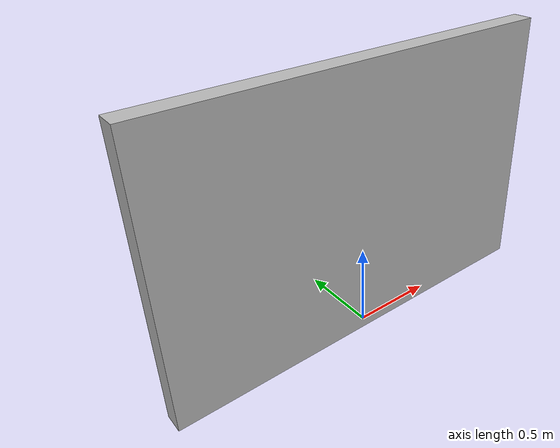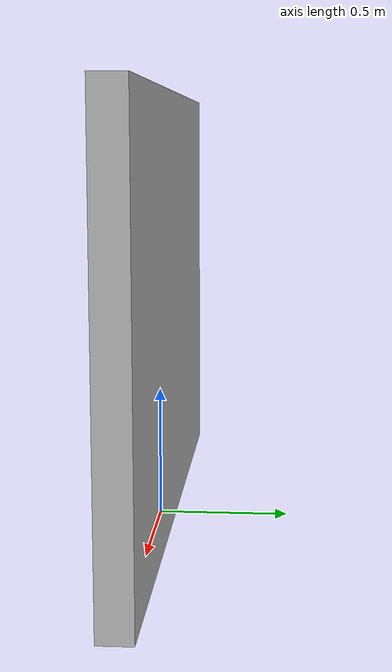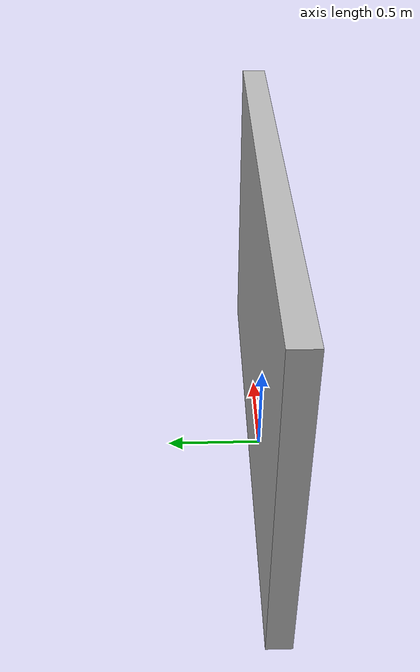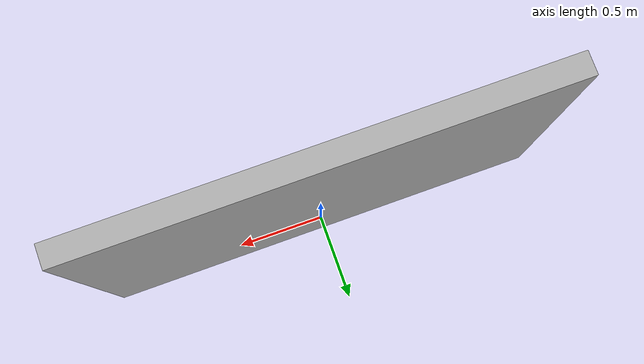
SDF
<?xml version="1.0" ?>
<sdf version="1.6">
  <model name="bot11">
    <pose>0 0 0.825 0 0 0</pose>
    <link name="box">
      <pose>0 0 0 0 0 0</pose>
      <collision name="collision">
        <geometry>
          <box>
            <size>0.12 0.025 0.25</size>
          </box>
        </geometry>
      </collision>
      <visual name="visual">
        <geometry>
          <box>
	    <size>2.5 0.12 1.65</size>
          </box>
        </geometry>
        <material>
          <script>
            <uri>model://bot11/materials/scripts</uri>
            <uri>model://bot11/materials/textures</uri>
            <name>bot11</name>
          </script>
        </material>
      </visual>
    </link>
  </model>
</sdf>
